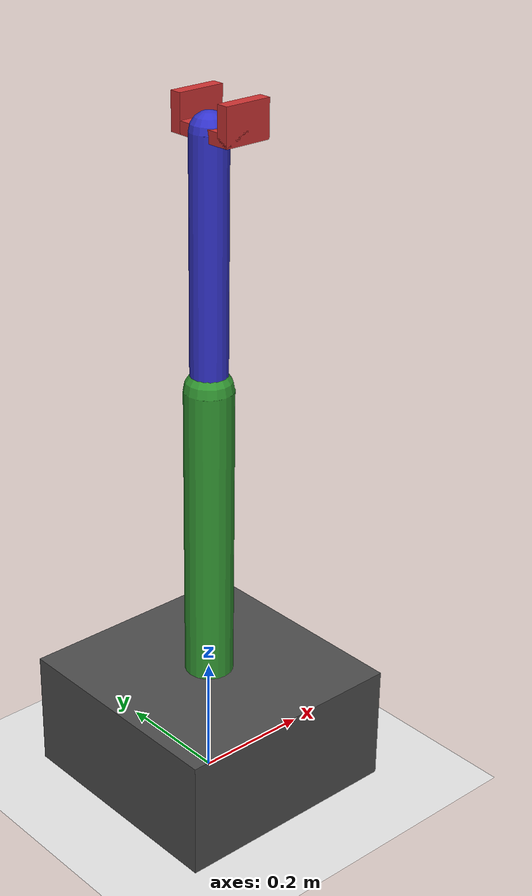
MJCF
<mujoco model="robot_antropomorfico_Z_Y_estable">
    <compiler angle="degree" coordinate="local"/>
    <option timestep="0.002" integrator="RK4"/>

    <visual>
        <headlight ambient="0.5 0.5 0.5"/>
    </visual>

    <worldbody>
        <light pos="0 0 3" dir="0 0 -1"/>
        <geom name="suelo" type="plane" size="2 2 0.1" rgba="0.9 0.9 0.9 1"/>

        <body name="base" pos="0 0 0.1">
            <geom name="base_geom" type="box" size="0.2 0.2 0.1" rgba="0.3 0.3 0.3 1"/>

            <body name="eslabon1" pos="0 0 0.1" gravcomp="1.0">
                <joint name="j1" type="hinge" axis="0 0 1" pos="0 0 0" range="-180 180" damping="1.0" armature="0.1"/>
                <geom name="brazo1" type="capsule" fromto="0 0 0  0 0 0.5" size="0.04" rgba="0.2 0.6 0.2 1" mass="2.0"/>

                <body name="eslabon2" pos="0 0 0.5" gravcomp="1.0">
                    <joint name="j2" type="hinge" axis="0 1 0" pos="0 0 0" range="-150 150" damping="1.0" armature="0.1"/>
                    <geom name="brazo2" type="capsule" fromto="0 0 0  0 0 0.4" size="0.03" rgba="0.2 0.2 0.8 1" mass="1.5"/>

                    <body name="pinza" pos="0 0 0.4">
                        <geom type="box" size="0.02 0.06 0.01" rgba="0.8 0.2 0.2 1" mass="0.3"/>
                        <geom type="box" size="0.04 0.01 0.03" pos="0.02 0.05 0.02" rgba="0.8 0.2 0.2 1" mass="0.1"/>
                        <geom type="box" size="0.04 0.01 0.03" pos="0.02 -0.05 0.02" rgba="0.8 0.2 0.2 1" mass="0.1"/>
                    </body>
                </body>
            </body>
        </body>
    </worldbody>

    <actuator>
        <position name="servo_j1" joint="j1" kp="400" kv="40"/>
        <position name="servo_j2" joint="j2" kp="300" kv="25"/>
    </actuator>
</mujoco>
